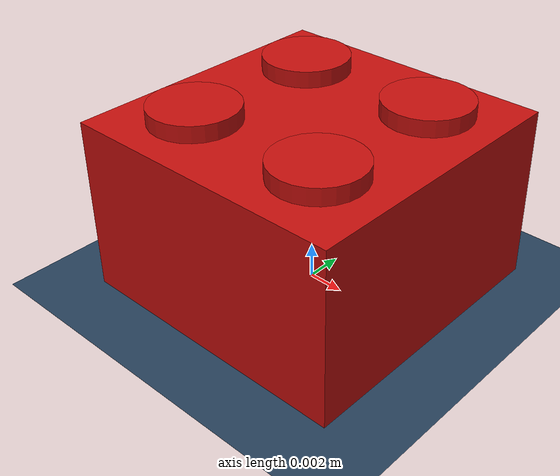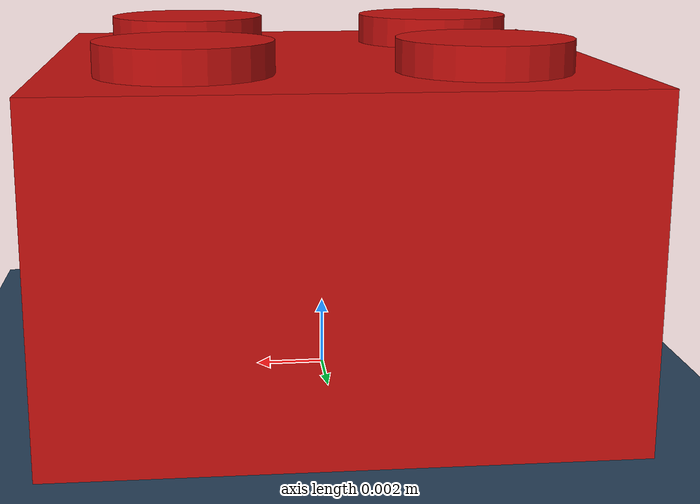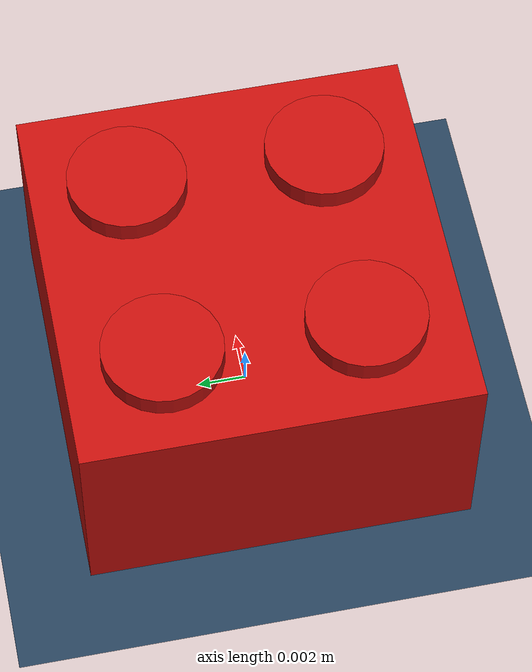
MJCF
<mujoco model="lego_brick_2x2_scene">
  <!--
    Standalone viewer scene for the lego_brick_2x2 asset.
    Quick look:
      python -m mujoco.viewer --mjcf assets/lego/scene_lego_brick_2x2.xml
  -->
  <option timestep="0.002" gravity="0 0 -9.81"/>

  <visual>
    <headlight ambient="0.4 0.4 0.4" diffuse="0.6 0.6 0.6" specular="0.1 0.1 0.1"/>
  </visual>

  <asset>
    <texture type="skybox" builtin="gradient" rgb1="0.3 0.5 0.7" rgb2="0 0 0" width="512" height="512"/>
    <texture type="2d" name="groundplane" builtin="checker" mark="edge" rgb1="0.2 0.3 0.4" rgb2="0.1 0.2 0.3"
              markrgb="0.8 0.8 0.8" width="300" height="300"/>
    <material name="groundplane" texture="groundplane" texuniform="true" texrepeat="5 5" reflectance="0.1"/>
  </asset>

  <worldbody>
    <light pos="0.2 0.2 0.3" dir="-0.5 -0.5 -1" diffuse="0.8 0.8 0.8"/>
    <geom name="floor" type="plane" size="0.5 0.5 0.05" material="groundplane"/>
  </worldbody>

  <include file="lego_brick_2x2.xml"/>

  <keyframe>
    <key name="dropped" qpos="0 0 0.05 1 0 0 0"/>
  </keyframe>
</mujoco>

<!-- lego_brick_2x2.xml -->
<mujoco model="lego_brick_2x2">
  <compiler angle="radian"/>

  <default>
    <default class="lego_brick_2x2">
      <!-- density is tuned down from ABS's real ~1050 kg/m3 so the solid
           primitive body (no hollow underside) lands near a real piece's mass -->
      <geom type="box" material="lego_red" density="500" friction="0.9 0.02 0.001"/>
      <default class="lego_brick_2x2/stud">
        <geom type="cylinder"/>
      </default>
    </default>
  </default>

  <asset>
    <material name="lego_red" rgba="0.77 0.06 0.05 1"/>
  </asset>

  <worldbody>
    <body name="lego_brick_2x2" childclass="lego_brick_2x2">
      <freejoint name="lego_brick_2x2_freejoint"/>

      <!-- brick body: 2 studs long (x) x 2 studs wide (y) x 9.6mm tall (z) -->
      <!-- mass/inertia are left to MuJoCo, computed from geom volume x density above -->
      <geom name="lego_brick_2x2_body" size="0.0079 0.0079 0.0048" pos="0 0 0.0048"/>

      <geom class="lego_brick_2x2/stud" name="lego_brick_2x2_stud_00" size="0.0024 0.00085" pos="-0.004 -0.004 0.00965"/>
      <geom class="lego_brick_2x2/stud" name="lego_brick_2x2_stud_01" size="0.0024 0.00085" pos="-0.004 0.004 0.00965"/>
      <geom class="lego_brick_2x2/stud" name="lego_brick_2x2_stud_10" size="0.0024 0.00085" pos="0.004 -0.004 0.00965"/>
      <geom class="lego_brick_2x2/stud" name="lego_brick_2x2_stud_11" size="0.0024 0.00085" pos="0.004 0.004 0.00965"/>
    </body>
  </worldbody>
</mujoco>
